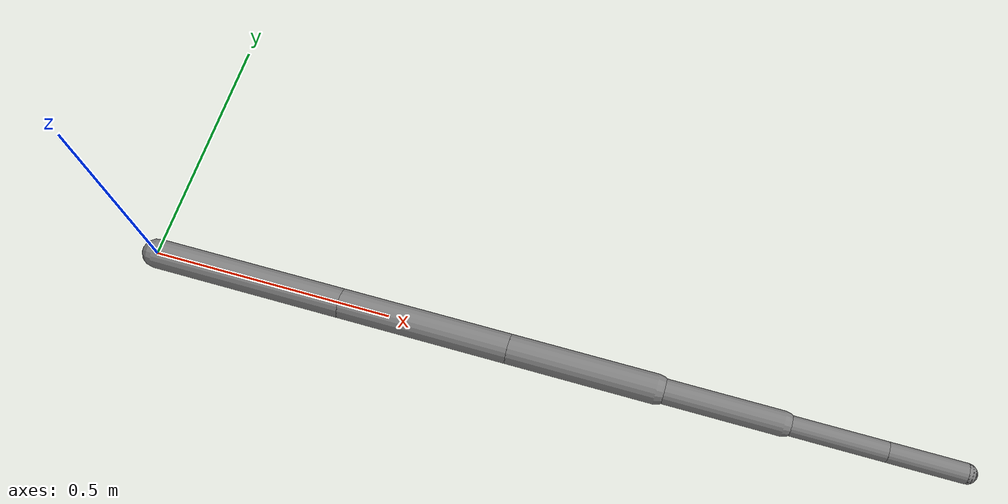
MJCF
<mujoco model="arm6dof">

    <option gravity="0 0 0"/>

    <worldbody>

        <light pos="0 0 3"/>

        <body name="base" pos="0 0 0">

            <!-- Joint1 yaw -->
            <joint name="j1"
                   type="hinge"
                   axis="0 0 1"/>

            <geom type="capsule"
                  fromto="0 0 0 0.4 0 0"
                  size="0.03"/>

            <body name="link1"
                  pos="0.4 0 0">

                <!-- Joint2 pitch -->
                <joint name="j2"
                       type="hinge"
                       axis="0 1 0"/>

                <geom type="capsule"
                      fromto="0 0 0 0.35 0 0"
                      size="0.03"/>

                <body name="link2"
                      pos="0.35 0 0">

                    <!-- Joint3 pitch -->
                    <joint name="j3"
                           type="hinge"
                           axis="0 1 0"/>

                    <geom type="capsule"
                          fromto="0 0 0 0.3 0 0"
                          size="0.03"/>

                    <body name="link3"
                          pos="0.3 0 0">

                        <!-- Joint4 roll -->
                        <joint name="j4"
                               type="hinge"
                               axis="1 0 0"/>

                        <geom type="capsule"
                              fromto="0 0 0 0.25 0 0"
                              size="0.025"/>

                        <body name="link4"
                              pos="0.25 0 0">

                            <!-- Joint5 pitch -->
                            <joint name="j5"
                                   type="hinge"
                                   axis="0 1 0"/>

                            <geom type="capsule"
                                  fromto="0 0 0 0.2 0 0"
                                  size="0.02"/>

                            <body name="link5"
                                  pos="0.2 0 0">

                                <!-- Joint6 roll -->
                                <joint name="j6"
                                       type="hinge"
                                       axis="1 0 0"/>

                                <geom type="capsule"
                                      fromto="0 0 0 0.15 0 0"
                                      size="0.02"/>

                                <site name="ee"
                                      pos="0.15 0 0"
                                      size="0.02"/>

                            </body>

                        </body>

                    </body>

                </body>

            </body>

        </body>

    </worldbody>

</mujoco>
